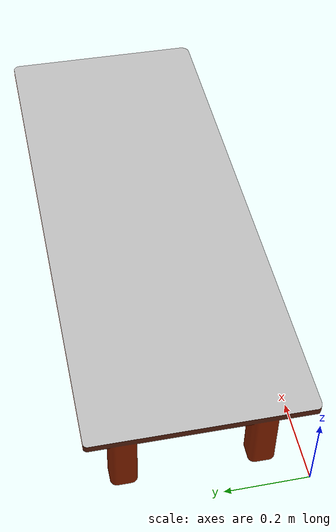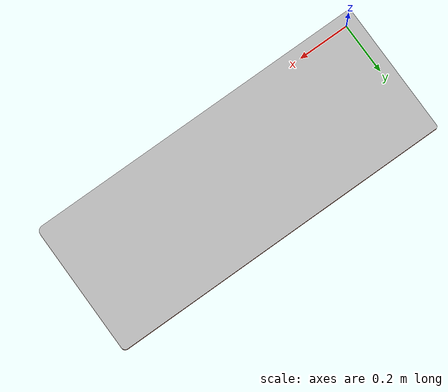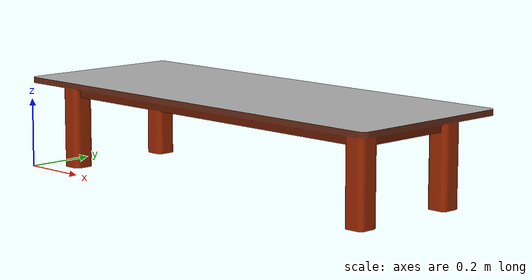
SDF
<?xml version="1.0" ?>
<sdf version="1.5">
  <model name="tea_table">
    <link name="link">
      <pose>0 0 0 0 0 0</pose>
      <gravity>false</gravity>
      <inertial>
	<mass>20</mass>
      </inertial>
      <visual name="tea_table">
	<geometry>
	  <mesh>
	    <uri>model://tea_table/meshes/tea_table.dae</uri>
	  </mesh>
	</geometry>
      </visual>
      <collision name="tea_table">
	<geometry>
	  <mesh>
	    <uri>model://tea_table/meshes/tea_table.dae</uri>
	  </mesh>
	</geometry>
      </collision>
    </link>
    <static>1</static>
  </model>
</sdf>
